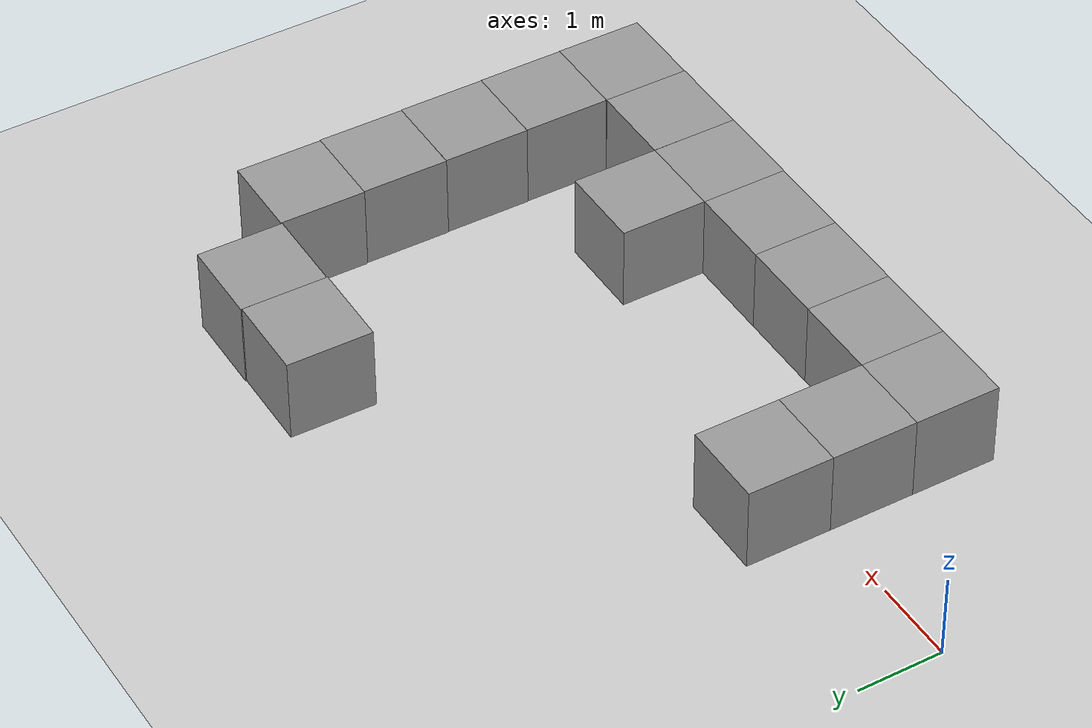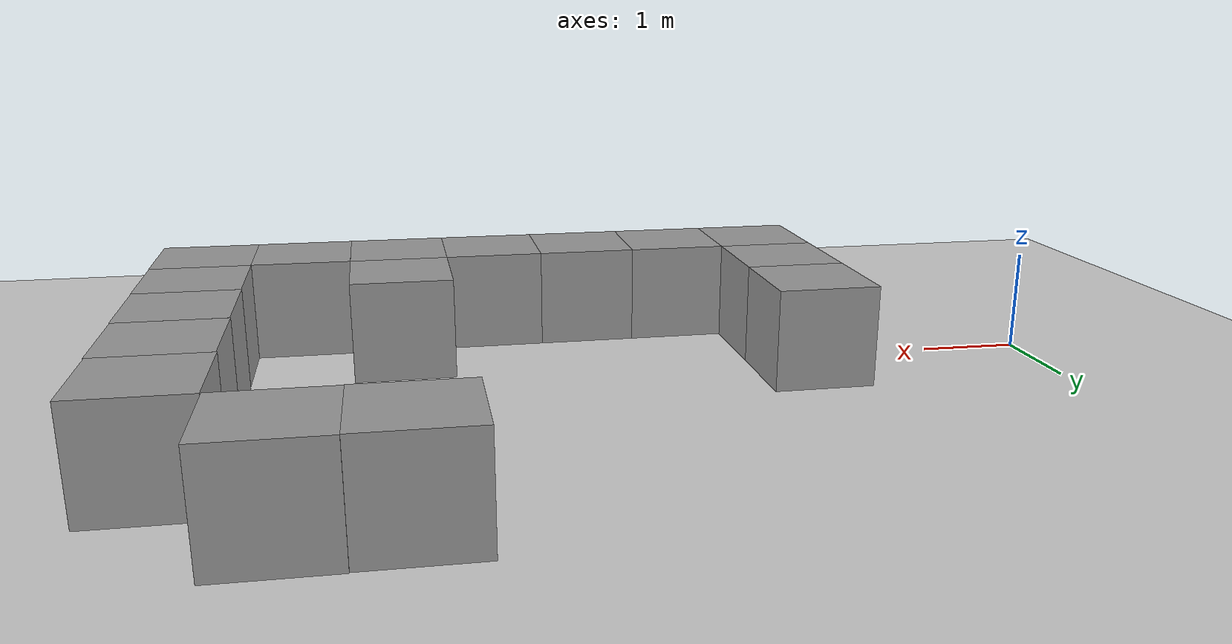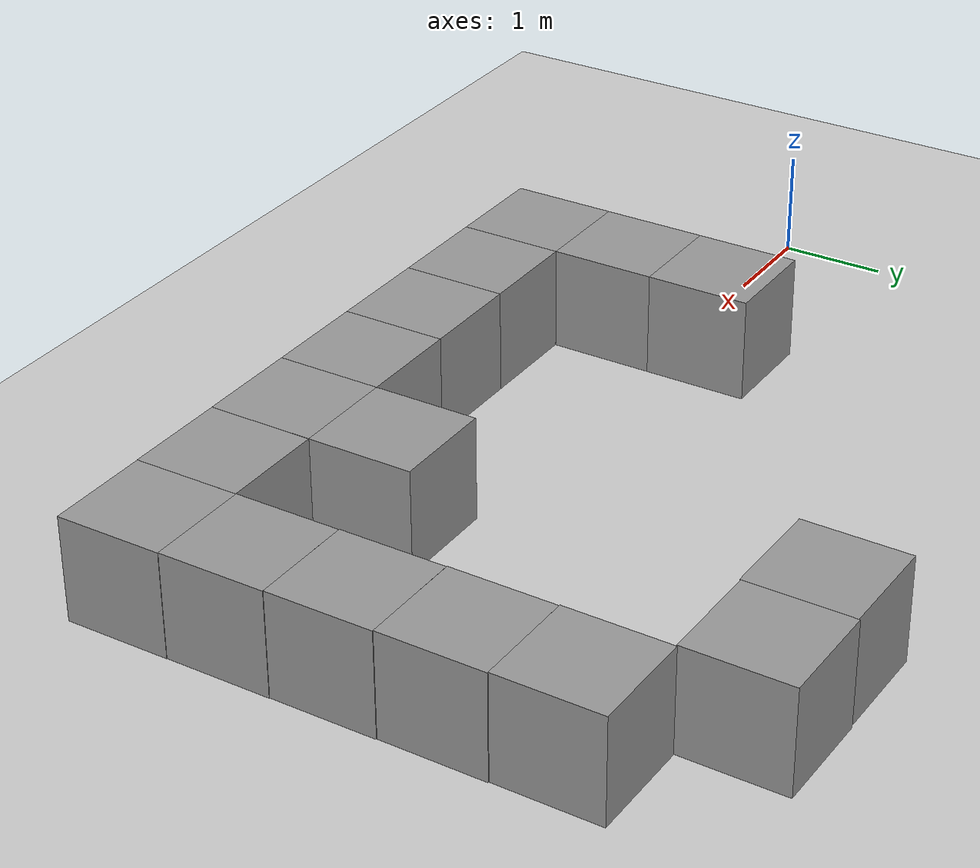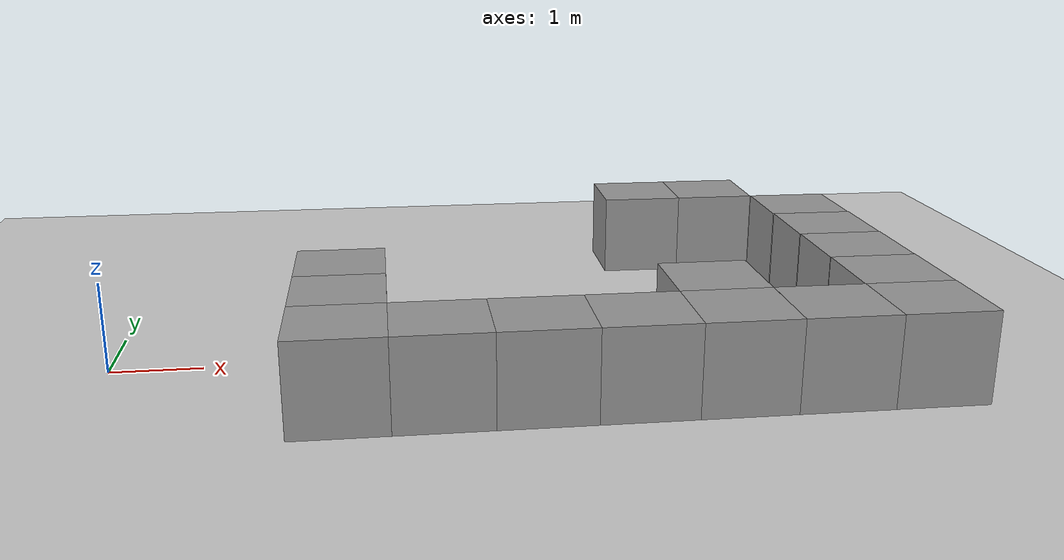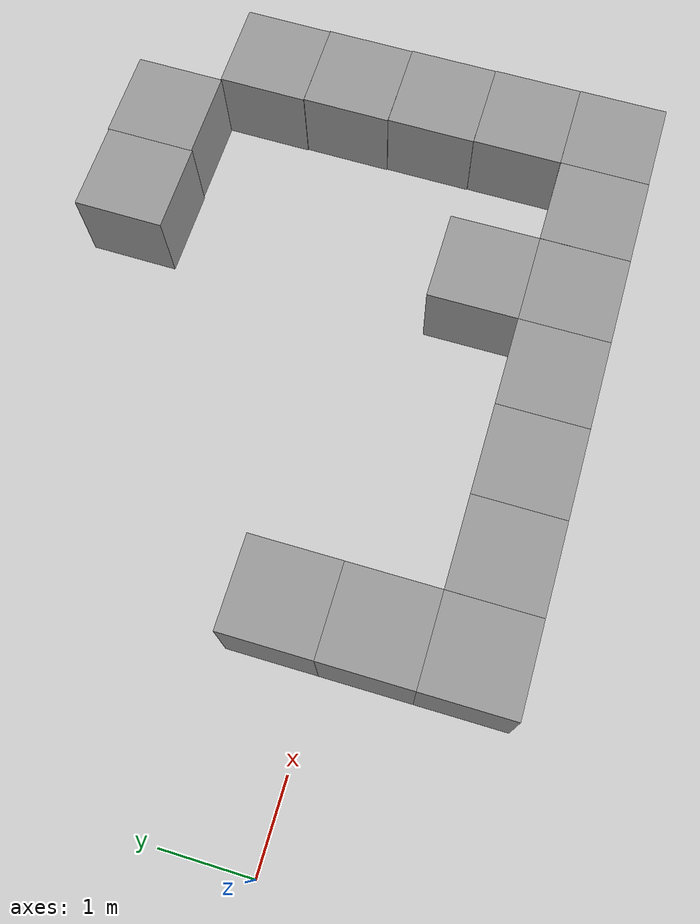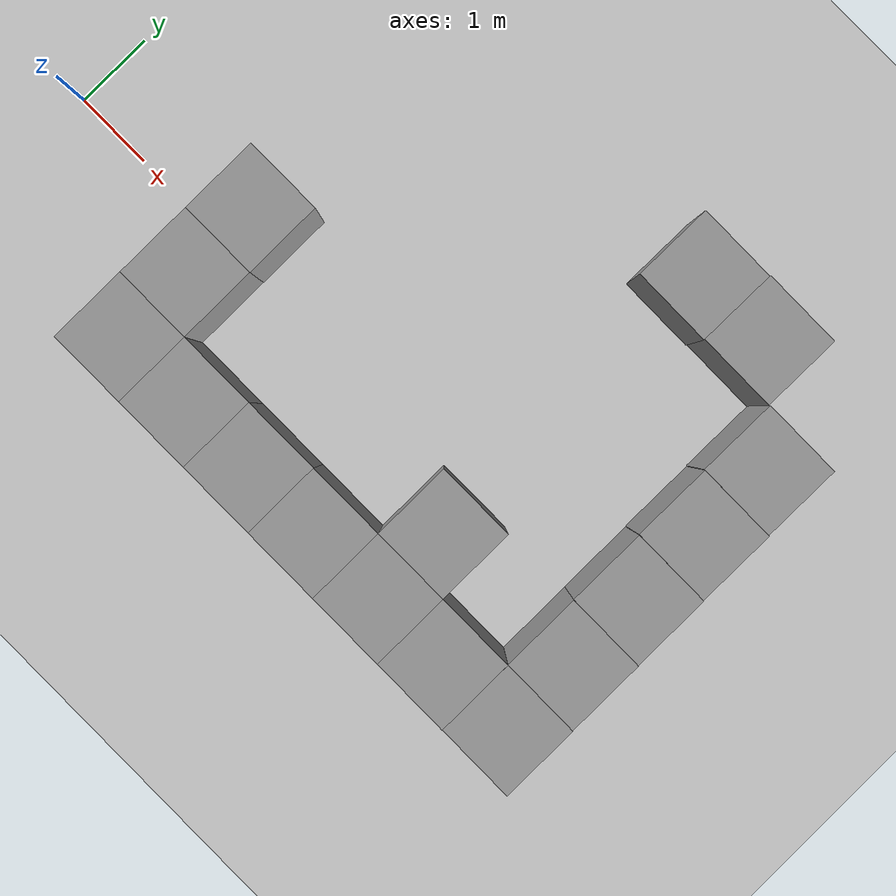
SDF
<sdf version="1.7">
 <world name="default">
  <light name="sun" type="directional">
   <pose>0 0 10 0 -0 0</pose>
   <diffuse>0.8 0.8 0.8 1</diffuse>
   <specular>0.2 0.2 0.2 1</specular>
   <attenuation>
    <range>1000</range>
    <constant>0.9</constant>
    <linear>0.01</linear>
    <quadratic>0.001</quadratic>
   </attenuation>
   <direction>-0.5 0.1 -0.9</direction>
   <spot><inner_angle>0</inner_angle><outer_angle>0</outer_angle><falloff>0</falloff></spot>
  </light>
  <model name="ground_plane">
   <static>1</static>
   <link name="link">
    <collision name="collision">
     <geometry><plane><normal>0 0 1</normal><size>100 100</size></plane></geometry>
     <surface>
      <contact><collide_bitmask>65535</collide_bitmask></contact>
      <friction><ode><mu>100</mu><mu2>50</mu2></ode></friction>
     </surface>
    </collision>
    <visual name="visual">
     <cast_shadows>0</cast_shadows>
     <geometry><plane><normal>0 0 1</normal><size>100 100</size></plane></geometry>
     <material>
      <script><uri>file://media/materials/scripts/gazebo.material</uri><name>Gazebo/Grey</name></script>
     </material>
    </visual>
   </link>
  </model>
  <gravity>0 0 -9.8</gravity>
  <magnetic_field>6e-06 2.3e-05 -4.2e-05</magnetic_field>
  <atmosphere type="adiabatic"/>
  <physics type="ode">
   <max_step_size>0.001</max_step_size>
   <real_time_factor>1</real_time_factor>
   <real_time_update_rate>1000</real_time_update_rate>
  </physics>
  <scene><ambient>0.4 0.4 0.4 1</ambient><background>0.7 0.7 0.7 1</background><shadows>1</shadows></scene>
  <spherical_coordinates>
   <surface_model>EARTH_WGS84</surface_model>
   <latitude_deg>0</latitude_deg>
   <longitude_deg>0</longitude_deg>
   <elevation>0</elevation>
   <heading_deg>0</heading_deg>
  </spherical_coordinates>
  <model name="unit_box">
   <pose>2.5 0.5 0.499995 0 -1e-05 0.00045</pose>
   <link name="link">
    <inertial>
     <mass>1</mass>
     <inertia>
      <ixx>0.166667</ixx>
      <ixy>0</ixy>
      <ixz>0</ixz>
      <iyy>0.166667</iyy>
      <iyz>0</iyz>
      <izz>0.166667</izz>
     </inertia>
    </inertial>
    <collision name="collision"><geometry><box><size>1 1 1</size></box></geometry></collision>
    <visual name="visual">
     <geometry><box><size>1 1 1</size></box></geometry>
     <material>
      <script><name>Gazebo/Grey</name><uri>file://media/materials/scripts/gazebo.material</uri></script>
     </material>
    </visual>
   </link>
  </model>
  <model name="unit_box_0">
   <pose>2.5 -0.5 0.499995 0 1e-05 0.00043</pose>
   <link name="link">
    <inertial>
     <mass>1</mass>
     <inertia>
      <ixx>0.166667</ixx>
      <ixy>0</ixy>
      <ixz>0</ixz>
      <iyy>0.166667</iyy>
      <iyz>0</iyz>
      <izz>0.166667</izz>
     </inertia>
    </inertial>
    <collision name="collision"><geometry><box><size>1 1 1</size></box></geometry></collision>
    <visual name="visual">
     <geometry><box><size>1 1 1</size></box></geometry>
     <material>
      <script><name>Gazebo/Grey</name><uri>file://media/materials/scripts/gazebo.material</uri></script>
     </material>
    </visual>
   </link>
  </model>
  <model name="unit_box_1">
   <pose>2.5 -1.5 0.499995 0 -1e-05 0.000399</pose>
   <link name="link">
    <inertial>
     <mass>1</mass>
     <inertia>
      <ixx>0.166667</ixx>
      <ixy>0</ixy>
      <ixz>0</ixz>
      <iyy>0.166667</iyy>
      <iyz>0</iyz>
      <izz>0.166667</izz>
     </inertia>
    </inertial>
    <collision name="collision"><geometry><box><size>1 1 1</size></box></geometry></collision>
    <visual name="visual">
     <geometry><box><size>1 1 1</size></box></geometry>
     <material>
      <script><name>Gazebo/Grey</name><uri>file://media/materials/scripts/gazebo.material</uri></script>
     </material>
    </visual>
   </link>
  </model>
  <model name="unit_box_2">
   <pose>3.5 -1.5 0.5 0 -0 -3e-06</pose>
   <link name="link">
    <inertial>
     <mass>1</mass>
     <inertia>
      <ixx>0.166667</ixx>
      <ixy>0</ixy>
      <ixz>0</ixz>
      <iyy>0.166667</iyy>
      <iyz>0</iyz>
      <izz>0.166667</izz>
     </inertia>
    </inertial>
    <collision name="collision"><geometry><box><size>1 1 1</size></box></geometry></collision>
    <visual name="visual">
     <geometry><box><size>1 1 1</size></box></geometry>
     <material>
      <script><name>Gazebo/Grey</name><uri>file://media/materials/scripts/gazebo.material</uri></script>
     </material>
    </visual>
   </link>
  </model>
  <model name="unit_box_3">
   <pose>4.5 -1.5 0.499995 0 1e-05 -4e-06</pose>
   <link name="link">
    <inertial>
     <mass>1</mass>
     <inertia>
      <ixx>0.166667</ixx>
      <ixy>0</ixy>
      <ixz>0</ixz>
      <iyy>0.166667</iyy>
      <iyz>0</iyz>
      <izz>0.166667</izz>
     </inertia>
    </inertial>
    <collision name="collision"><geometry><box><size>1 1 1</size></box></geometry></collision>
    <visual name="visual">
     <geometry><box><size>1 1 1</size></box></geometry>
     <material>
      <script><name>Gazebo/Grey</name><uri>file://media/materials/scripts/gazebo.material</uri></script>
     </material>
    </visual>
   </link>
  </model>
  <model name="unit_box_4">
   <pose>5.5 -1.5 0.499995 0 1e-05 0</pose>
   <link name="link">
    <inertial>
     <mass>1</mass>
     <inertia>
      <ixx>0.166667</ixx>
      <ixy>0</ixy>
      <ixz>0</ixz>
      <iyy>0.166667</iyy>
      <iyz>0</iyz>
      <izz>0.166667</izz>
     </inertia>
    </inertial>
    <collision name="collision"><geometry><box><size>1 1 1</size></box></geometry></collision>
    <visual name="visual">
     <geometry><box><size>1 1 1</size></box></geometry>
     <material>
      <script><name>Gazebo/Grey</name><uri>file://media/materials/scripts/gazebo.material</uri></script>
     </material>
    </visual>
   </link>
  </model>
  <model name="unit_box_5">
   <pose>6.5 -1.5 0.499995 0 1e-05 -0.000101</pose>
   <link name="link">
    <inertial>
     <mass>1</mass>
     <inertia>
      <ixx>0.166667</ixx>
      <ixy>0</ixy>
      <ixz>0</ixz>
      <iyy>0.166667</iyy>
      <iyz>0</iyz>
      <izz>0.166667</izz>
     </inertia>
    </inertial>
    <collision name="collision"><geometry><box><size>1 1 1</size></box></geometry></collision>
    <visual name="visual">
     <geometry><box><size>1 1 1</size></box></geometry>
     <material>
      <script><name>Gazebo/Grey</name><uri>file://media/materials/scripts/gazebo.material</uri></script>
     </material>
    </visual>
   </link>
  </model>
  <model name="unit_box_6">
   <pose>7.5 -1.5 0.499995 0 -1e-05 -0.00303</pose>
   <link name="link">
    <inertial>
     <mass>1</mass>
     <inertia>
      <ixx>0.166667</ixx>
      <ixy>0</ixy>
      <ixz>0</ixz>
      <iyy>0.166667</iyy>
      <iyz>0</iyz>
      <izz>0.166667</izz>
     </inertia>
    </inertial>
    <collision name="collision"><geometry><box><size>1 1 1</size></box></geometry></collision>
    <visual name="visual">
     <geometry><box><size>1 1 1</size></box></geometry>
     <material>
      <script><name>Gazebo/Grey</name><uri>file://media/materials/scripts/gazebo.material</uri></script>
     </material>
    </visual>
   </link>
  </model>
  <model name="unit_box_7">
   <pose>8.5 -1.5 0.499995 0 1e-05 -0.003593</pose>
   <link name="link">
    <inertial>
     <mass>1</mass>
     <inertia>
      <ixx>0.166667</ixx>
      <ixy>0</ixy>
      <ixz>0</ixz>
      <iyy>0.166667</iyy>
      <iyz>0</iyz>
      <izz>0.166667</izz>
     </inertia>
    </inertial>
    <collision name="collision"><geometry><box><size>1 1 1</size></box></geometry></collision>
    <visual name="visual">
     <geometry><box><size>1 1 1</size></box></geometry>
     <material>
      <script><name>Gazebo/Grey</name><uri>file://media/materials/scripts/gazebo.material</uri></script>
     </material>
    </visual>
   </link>
  </model>
  <model name="unit_box_8">
   <pose>8.5 -0.5 0.499995 0 1e-05 -0.004956</pose>
   <link name="link">
    <inertial>
     <mass>1</mass>
     <inertia>
      <ixx>0.166667</ixx>
      <ixy>0</ixy>
      <ixz>0</ixz>
      <iyy>0.166667</iyy>
      <iyz>0</iyz>
      <izz>0.166667</izz>
     </inertia>
    </inertial>
    <collision name="collision"><geometry><box><size>1 1 1</size></box></geometry></collision>
    <visual name="visual">
     <geometry><box><size>1 1 1</size></box></geometry>
     <material>
      <script><name>Gazebo/Grey</name><uri>file://media/materials/scripts/gazebo.material</uri></script>
     </material>
    </visual>
   </link>
  </model>
  <model name="unit_box_9">
   <pose>8.5 0.5 0.499995 0 1e-05 -0.006246</pose>
   <link name="link">
    <inertial>
     <mass>1</mass>
     <inertia>
      <ixx>0.166667</ixx>
      <ixy>0</ixy>
      <ixz>0</ixz>
      <iyy>0.166667</iyy>
      <iyz>0</iyz>
      <izz>0.166667</izz>
     </inertia>
    </inertial>
    <collision name="collision"><geometry><box><size>1 1 1</size></box></geometry></collision>
    <visual name="visual">
     <geometry><box><size>1 1 1</size></box></geometry>
     <material>
      <script><name>Gazebo/Grey</name><uri>file://media/materials/scripts/gazebo.material</uri></script>
     </material>
    </visual>
   </link>
  </model>
  <model name="unit_box_10">
   <pose>8.5 1.5 0.499995 1e-05 0 -0.00943</pose>
   <link name="link">
    <inertial>
     <mass>1</mass>
     <inertia>
      <ixx>0.166667</ixx>
      <ixy>0</ixy>
      <ixz>0</ixz>
      <iyy>0.166667</iyy>
      <iyz>0</iyz>
      <izz>0.166667</izz>
     </inertia>
    </inertial>
    <collision name="collision"><geometry><box><size>1 1 1</size></box></geometry></collision>
    <visual name="visual">
     <geometry><box><size>1 1 1</size></box></geometry>
     <material>
      <script><name>Gazebo/Grey</name><uri>file://media/materials/scripts/gazebo.material</uri></script>
     </material>
    </visual>
   </link>
  </model>
  <model name="unit_box_11">
   <pose>8.5 2.5 0.499995 0 1e-05 -0.010445</pose>
   <link name="link">
    <inertial>
     <mass>1</mass>
     <inertia>
      <ixx>0.166667</ixx>
      <ixy>0</ixy>
      <ixz>0</ixz>
      <iyy>0.166667</iyy>
      <iyz>0</iyz>
      <izz>0.166667</izz>
     </inertia>
    </inertial>
    <collision name="collision"><geometry><box><size>1 1 1</size></box></geometry></collision>
    <visual name="visual">
     <geometry><box><size>1 1 1</size></box></geometry>
     <material>
      <script><name>Gazebo/Grey</name><uri>file://media/materials/scripts/gazebo.material</uri></script>
     </material>
    </visual>
   </link>
  </model>
  <model name="unit_box_12">
   <pose>7.5 3.5 0.499995 -1e-05 -0 -0.011477</pose>
   <link name="link">
    <inertial>
     <mass>1</mass>
     <inertia>
      <ixx>0.166667</ixx>
      <ixy>0</ixy>
      <ixz>0</ixz>
      <iyy>0.166667</iyy>
      <iyz>0</iyz>
      <izz>0.166667</izz>
     </inertia>
    </inertial>
    <collision name="collision"><geometry><box><size>1 1 1</size></box></geometry></collision>
    <visual name="visual">
     <geometry><box><size>1 1 1</size></box></geometry>
     <material>
      <script><name>Gazebo/Grey</name><uri>file://media/materials/scripts/gazebo.material</uri></script>
     </material>
    </visual>
   </link>
  </model>
  <model name="unit_box_13">
   <pose>6.5 3.5 0.499995 -0 1e-05 -0.011464</pose>
   <link name="link">
    <inertial>
     <mass>1</mass>
     <inertia>
      <ixx>0.166667</ixx>
      <ixy>0</ixy>
      <ixz>0</ixz>
      <iyy>0.166667</iyy>
      <iyz>0</iyz>
      <izz>0.166667</izz>
     </inertia>
    </inertial>
    <collision name="collision"><geometry><box><size>1 1 1</size></box></geometry></collision>
    <visual name="visual">
     <geometry><box><size>1 1 1</size></box></geometry>
     <material>
      <script><name>Gazebo/Grey</name><uri>file://media/materials/scripts/gazebo.material</uri></script>
     </material>
    </visual>
   </link>
  </model>
  <model name="unit_box_14">
   <pose>6.5 -0.5 0.5 0 -0 0</pose>
   <link name="link">
    <inertial>
     <mass>1</mass>
     <inertia>
      <ixx>0.166667</ixx>
      <ixy>0</ixy>
      <ixz>0</ixz>
      <iyy>0.166667</iyy>
      <iyz>0</iyz>
      <izz>0.166667</izz>
     </inertia>
    </inertial>
    <collision name="collision"><geometry><box><size>1 1 1</size></box></geometry></collision>
    <visual name="visual">
     <geometry><box><size>1 1 1</size></box></geometry>
     <material>
      <script><name>Gazebo/Grey</name><uri>file://media/materials/scripts/gazebo.material</uri></script>
     </material>
    </visual>
   </link>
  </model>
 </world>
</sdf>
